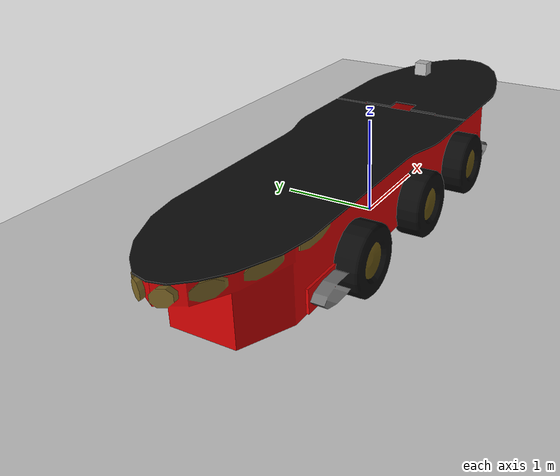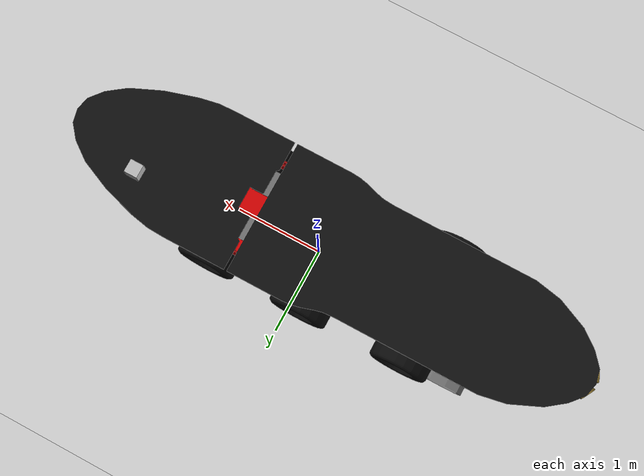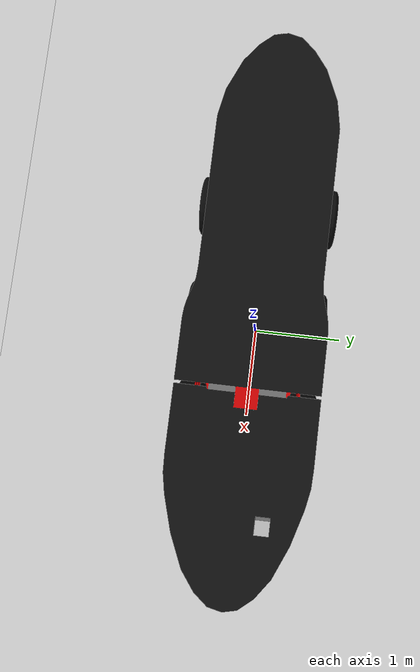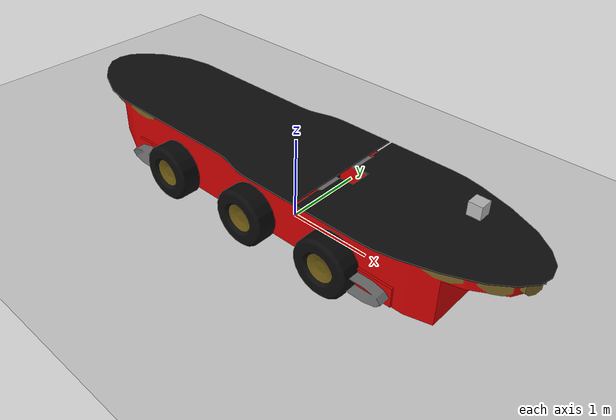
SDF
<?xml version="1.0"?>
<sdf version="1.6">
  <world name="default">

    <include>
      <uri>model://ground_plane</uri>
    </include>

    <include>
      <uri>model://sun</uri>
    </include>

    <model name='vehicle'>
      <pose>0 0 0.325 0 -0 0</pose>

      <link name='chassis'>
        <pose>-0.2 -0 0.2 0 -0 0</pose>
        <inertial>
          <mass>1.14395</mass>
          <inertia>
            <ixx>0.126164</ixx>
            <ixy>0</ixy>
            <ixz>0</ixz>
            <iyy>0.416519</iyy>
            <iyz>0</iyz>
            <izz>0.481014</izz>
          </inertia>
        </inertial>
        <visual name='visual'>
          <geometry>
            <mesh>
              <uri>model://pioneer3at/meshes/chassis.dae</uri>
              <scale>12 4 4</scale>
              <pose>0 0 7</pose>
            </mesh>
          </geometry>
        </visual>
        <collision name='collision'>
          <geometry>
            <box>
              <size>1.01142 1 0.568726</size>
            </box>
          </geometry>
        </collision>
      </link>

      <link name='front_left_wheel'>
        <pose>0.994283 0.625029 -0.025 -1.5707 0 0</pose>
        <inertial>
          <mass>2</mass>
          <inertia>
            <ixx>0.145833</ixx>
            <ixy>0</ixy>
            <ixz>0</ixz>
            <iyy>0.145833</iyy>
            <iyz>0</iyz>
            <izz>0.125</izz>
          </inertia>
        </inertial>
        <visual name='visual'>
          <geometry>
            <mesh>
              <uri>model://pioneer3at/meshes/wheel.dae</uri>
              <scale>3 3 3</scale>
            </mesh>
          </geometry>
        </visual>
        <collision name='collision'>
          <geometry>
            <sphere>
              <radius>0.3</radius>
            </sphere>
          </geometry>
          <surface>
            <friction>
              <ode>
                <mu>1</mu>
                <mu2>1</mu2>
                <slip1>0</slip1>
                <slip2>0</slip2>
              </ode>
            </friction>
            <contact>
              <ode>
                <soft_cfm>0</soft_cfm>
                <soft_erp>0.2</soft_erp>
                <kp>1e+13</kp>
                <kd>1</kd>
                <max_vel>0.01</max_vel>
                <min_depth>0.01</min_depth>
              </ode>
            </contact>
          </surface>
        </collision>
      </link>

      <link name='front_right_wheel'>
        <pose>0.994282 -0.625029 -0.025 -1.5707 0 0</pose>
        <inertial>
          <mass>2</mass>
          <inertia>
            <ixx>0.145833</ixx>
            <ixy>0</ixy>
            <ixz>0</ixz>
            <iyy>0.145833</iyy>
            <iyz>0</iyz>
            <izz>0.125</izz>
          </inertia>
        </inertial>
        <visual name='visual'>
          <geometry>
            <mesh>
              <uri>model://pioneer3at/meshes/wheel.dae</uri>
              <scale>3 3 3</scale>
            </mesh>
          </geometry>
        </visual>
        <collision name='collision'>
          <geometry>
            <sphere>
              <radius>0.3</radius>
            </sphere>
          </geometry>
          <surface>
            <friction>
              <ode>
                <mu>1</mu>
                <mu2>1</mu2>
                <slip1>0</slip1>
                <slip2>0</slip2>
              </ode>
            </friction>
            <contact>
              <ode>
                <soft_cfm>0</soft_cfm>
                <soft_erp>0.2</soft_erp>
                <kp>1e+13</kp>
                <kd>1</kd>
                <max_vel>0.01</max_vel>
                <min_depth>0.01</min_depth>
              </ode>
            </contact>
          </surface>
        </collision>
       </link>

       <link name='middle_left_wheel'>
        <pose>-0.137138 0.625029 -0.025 -1.5707 0 0</pose>
        <inertial>
          <mass>2</mass>
          <inertia>
            <ixx>0.145833</ixx>
            <ixy>0</ixy>
            <ixz>0</ixz>
            <iyy>0.145833</iyy>
            <iyz>0</iyz>
            <izz>0.125</izz>
          </inertia>
        </inertial>
        <visual name='visual'>
          <geometry>
            <mesh>
              <uri>model://pioneer3at/meshes/wheel.dae</uri>
              <scale>3 3 3</scale>
            </mesh>
          </geometry>
        </visual>
        <collision name='collision'>
          <geometry>
            <sphere>
              <radius>0.3</radius>
            </sphere>
          </geometry>
          <surface>
            <friction>
              <ode>
                <mu>1</mu>
                <mu2>1</mu2>
                <slip1>0</slip1>
                <slip2>0</slip2>
              </ode>
            </friction>
            <contact>
              <ode>
                <soft_cfm>0</soft_cfm>
                <soft_erp>0.2</soft_erp>
                <kp>1e+13</kp>
                <kd>1</kd>
                <max_vel>0.01</max_vel>
                <min_depth>0.01</min_depth>
              </ode>
            </contact>
          </surface>
        </collision>
      </link>

      <link name='middle_right_wheel'>
        <pose>-0.137138 -0.625029 -0.025 -1.5707 0 0</pose>
        <inertial>
          <mass>2</mass>
          <inertia>
            <ixx>0.145833</ixx>
            <ixy>0</ixy>
            <ixz>0</ixz>
            <iyy>0.145833</iyy>
            <iyz>0</iyz>
            <izz>0.125</izz>
          </inertia>
        </inertial>
        <visual name='visual'>
          <geometry>
            <mesh>
              <uri>model://pioneer3at/meshes/wheel.dae</uri>
              <scale>3 3 3</scale>
            </mesh>
          </geometry>
        </visual>
        <collision name='collision'>
          <geometry>
            <sphere>
              <radius>0.3</radius>
            </sphere>
          </geometry>
          <surface>
            <friction>
              <ode>
                <mu>1</mu>
                <mu2>1</mu2>
                <slip1>0</slip1>
                <slip2>0</slip2>
              </ode>
            </friction>
            <contact>
              <ode>
                <soft_cfm>0</soft_cfm>
                <soft_erp>0.2</soft_erp>
                <kp>1e+13</kp>
                <kd>1</kd>
                <max_vel>0.01</max_vel>
                <min_depth>0.01</min_depth>
              </ode>
            </contact>
          </surface>
        </collision>
      </link>

      <link name='back_left_wheel'>
        <pose>-1.357138 0.625029 -0.025 -1.5707 0 0</pose>
        <inertial>
          <mass>2</mass>
          <inertia>
            <ixx>0.145833</ixx>
            <ixy>0</ixy>
            <ixz>0</ixz>
            <iyy>0.145833</iyy>
            <iyz>0</iyz>
            <izz>0.125</izz>
          </inertia>
        </inertial>
        <visual name='visual'>
          <geometry>
            <mesh>
              <uri>model://pioneer3at/meshes/wheel.dae</uri>
              <scale>3 3 3</scale>
            </mesh>
          </geometry>
        </visual>
        <collision name='collision'>
          <geometry>
            <sphere>
              <radius>0.3</radius>
            </sphere>
          </geometry>
          <surface>
            <friction>
              <ode>
                <mu>1</mu>
                <mu2>1</mu2>
                <slip1>0</slip1>
                <slip2>0</slip2>
              </ode>
            </friction>
            <contact>
              <ode>
                <soft_cfm>0</soft_cfm>
                <soft_erp>0.2</soft_erp>
                <kp>1e+13</kp>
                <kd>1</kd>
                <max_vel>0.01</max_vel>
                <min_depth>0.01</min_depth>
              </ode>
            </contact>
          </surface>
        </collision>
      </link>

      <link name='back_right_wheel'>
        <pose>-1.357138 -0.625029 -0.025 -1.5707 0 0</pose>
        <inertial>
          <mass>2</mass>
          <inertia>
            <ixx>0.145833</ixx>
            <ixy>0</ixy>
            <ixz>0</ixz>
            <iyy>0.145833</iyy>
            <iyz>0</iyz>
            <izz>0.125</izz>
          </inertia>
        </inertial>
        <visual name='visual'>
          <geometry>
            <mesh>
              <uri>model://pioneer3at/meshes/wheel.dae</uri>
              <scale>3 3 3</scale>
            </mesh>
          </geometry>
        </visual>
        <collision name='collision'>
          <geometry>
            <sphere>
              <radius>0.3</radius>
            </sphere>
          </geometry>
          <surface>
            <friction>
              <ode>
                <mu>1</mu>
                <mu2>1</mu2>
                <slip1>0</slip1>
                <slip2>0</slip2>
              </ode>
            </friction>
            <contact>
              <ode>
                <soft_cfm>0</soft_cfm>
                <soft_erp>0.2</soft_erp>
                <kp>1e+13</kp>
                <kd>1</kd>
                <max_vel>0.01</max_vel>
                <min_depth>0.01</min_depth>
              </ode>
            </contact>
          </surface>
        </collision>
      </link>

      <link name="camera_link">
  <collision name="collision-base">
          <pose>0 0 0 0 0 0</pose>
          <geometry>
            <box>
              <size>0.15 0.15 0.15</size>
            </box>
          </geometry>
        </collision>
        <pose>2 0.3 0.68 0 0 0</pose>

        <visual name="visual-base">
          <pose>0 0 0 0 0 0</pose>
          <geometry>
            <box>
              <size>0.15 0.15 0.15</size>
            </box>
          </geometry>
          <material>
            <name>red</name>
          </material>
        </visual>

        <inertial>
          <mass>1e-5</mass>
          <pose>0 0 0 0 0 0</pose>
          <inertia>
            <ixx>1e-6</ixx>
            <ixy>0</ixy>
            <ixz>0</ixz>
            <iyy>1e-6</iyy>
            <iyz>0</iyz>
            <izz>1e-6</izz>
          </inertia>
        </inertial>
    <sensor type="camera" name="camera1">
      <update_rate>30.0</update_rate>
      <camera name="head">
        <horizontal_fov>1.3962634</horizontal_fov>
        <image>
          <width>800</width>
          <height>800</height>
          <format>R8G8B8</format>
        </image>
        <clip>
          <near>0.02</near>
          <far>300</far>
        </clip>
        <noise>
          <type>gaussian</type>
          <!-- Noise is sampled independently per pixel on each frame.
               That pixel's noise value is added to each of its color
               channels, which at that point lie in the range [0,1]. -->
          <mean>0.0</mean>
          <stddev>0.007</stddev>
        </noise>
      </camera>
      <plugin name="camera_controller" filename="libgazebo_ros_camera.so">
        <alwaysOn>true</alwaysOn>
        <updateRate>0.0</updateRate>
        <cameraName>rrbot/camera1</cameraName>
        <imageTopicName>image_raw</imageTopicName>
        <cameraInfoTopicName>camera_info</cameraInfoTopicName>
        <frameName>camera_link</frameName>
        <hackBaseline>0.07</hackBaseline>
        <distortionK1>0.0</distortionK1>
        <distortionK2>0.0</distortionK2>
        <distortionK3>0.0</distortionK3>
        <distortionT1>0.0</distortionT1>
        <distortionT2>0.0</distortionT2>
      </plugin>
    </sensor>
  </link>

      <joint name='front_left_wheel_joint' type='revolute'>
        <parent>chassis</parent>
        <child>front_left_wheel</child>
        <axis>
          <xyz>0 0 1</xyz>
          <limit>
            <lower>-1.79769e+308</lower>
            <upper>1.79769e+308</upper>
          </limit>
        </axis>
      </joint>

      <joint name='front_right_wheel_joint' type='revolute'>
        <parent>chassis</parent>
        <child>front_right_wheel</child>
        <axis>
          <xyz>0 0 1</xyz>
          <limit>
            <lower>-1.79769e+308</lower>
            <upper>1.79769e+308</upper>
          </limit>
        </axis>
      </joint>

      <joint name='middle_left_wheel_joint' type='revolute'>
        <parent>chassis</parent>
        <child>middle_left_wheel</child>
          <mass>1</mass>
        <axis>0 0 1/xyz>
          <limit>
            <lower>-1.79769e+308</lower>
            <upper>1.79769e+308</upper>
          </limit>
        </axis>
      </joint>

      <joint name='middle_right_wheel_joint' type='revolute'>
        <parent>chassis</parent>
        <child>middle_right_wheel</child>
        <axis>
          <xyz>0 0 1</xyz>
          <limit>
            <lower>-1.79769e+308</lower>
            <upper>1.79769e+308</upper>
          </limit>
        </axis>
      </joint>

      <joint name='back_left_wheel_joint' type='revolute'>
        <parent>chassis</parent>
        <child>back_left_wheel</child>
          <mass>1</mass>
        <axis>0 0 1/xyz>
          <limit>
            <lower>-1.79769e+308</lower>
            <upper>1.79769e+308</upper>
          </limit>
        </axis>
      </joint>

      <joint name='back_right_wheel_joint' type='revolute'>
        <parent>chassis</parent>
        <child>back_right_wheel</child>
        <axis>
          <xyz>0 0 1</xyz>
          <limit>
            <lower>-1.79769e+308</lower>
            <upper>1.79769e+308</upper>
          </limit>
        </axis>
      </joint>

      <joint name="camera_joint" type="fixed">
        <axis>
          <xyz>0 1 0</xyz>
        </axis>
        <pose>1 0 2 0 0 0</pose>
        <parent>chassis</parent>
        <child>camera_link</child>
      </joint>

      <plugin name='diff_drive' filename='libgazebo_ros_diff_drive.so'>

        <ros>
          <namespace>/demo</namespace>
          <remapping>cmd_vel:=cmd_demo</remapping>
          <remapping>odom:=odom_demo</remapping>
        </ros>

        <!-- wheels -->
        <left_joint>front_left_wheel_joint</left_joint>
        <right_joint>front_right_wheel_joint</right_joint>
        <mid_left_joint>middle_left_wheel_joint</mid_left_joint>
        <mid_right_joint>middle_right_wheel_joint</mid_right_joint>
        <back_left_joint>back_left_wheel_joint</back_left_joint>
        <back_right_joint>back_right_wheel_joint</back_right_joint>

        <!-- kinematics -->
        <wheel_separation>1.25</wheel_separation>
        <wheel_diameter>0.6</wheel_diameter>

        <!-- limits -->
        <max_wheel_torque>20</max_wheel_torque>
        <max_wheel_acceleration>1.0</max_wheel_acceleration>

        <!-- output -->
        <publish_odom>true</publish_odom>
        <publish_odom_tf>true</publish_odom_tf>
        <publish_wheel_tf>true</publish_wheel_tf>

        <odometry_frame>odom_demo</odometry_frame>
        <robot_base_frame>chassis</robot_base_frame>

      </plugin>

    </model>

  </world>
</sdf>
